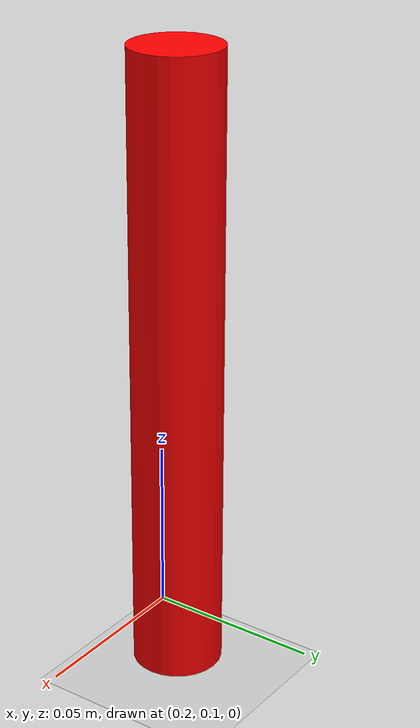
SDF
<?xml version="1.0" ?>
<sdf version="1.7">
  <world name="default">
    <physics name="bullet_featherstone_physics" type="bullet_featherstone">
      <bullet>
        <solver>
          <type>btSequentialImpulseConstraintSolver</type>
        </solver>
        <featherstone>true</featherstone>
      </bullet>
      <max_step_size>0.001</max_step_size>
      <real_time_factor>1</real_time_factor>
      <damping>0.1</damping>
      <gravity>0.0 0.0 -9.8</gravity>
    </physics>

    <plugin filename="gz-sim-physics-system" name="gz::sim::systems::Physics"/>
    <plugin filename="gz-sim-user-commands-system" name="gz::sim::systems::UserCommands"/>
    <plugin filename="gz-sim-scene-broadcaster-system" name="gz::sim::systems::SceneBroadcaster"/>
    <plugin filename="gz-sim-sensors-system" name="gz::sim::systems::Sensors">
      <render_engine>ogre2</render_engine>
    </plugin>

    <light type="directional" name="sun">
      <cast_shadows>true</cast_shadows>
      <pose>0 0 10 0 0 0</pose>
      <diffuse>0.8 0.8 0.8 1</diffuse>
      <specular>0.2 0.2 0.2 1</specular>
      <attenuation>
        <range>1000</range>
        <constant>0.9</constant>
        <linear>0.01</linear>
        <quadratic>0.001</quadratic>
      </attenuation>
      <direction>-0.5 0.1 -0.9</direction>
    </light>

    <model name="ground_plane">
      <static>true</static>
      <link name="link">
        <collision name="collision">
          <geometry>
            <plane>
              <normal>0 0 1</normal>
              <size>100 100</size>
            </plane>
          </geometry>
        </collision>
        <visual name="visual">
          <geometry>
            <plane>
              <normal>0 0 1</normal>
              <size>100 100</size>
            </plane>
          </geometry>
          <material>
            <ambient>0.8 0.8 0.8 1</ambient>
            <diffuse>0.8 0.8 0.8 1</diffuse>
          </material>
        </visual>
      </link>
    </model>

    <include>
      <uri>model://red_cylinder</uri>
      <name>red_cylinder</name>
      <pose>0.22 0.12 0.0875 0 0 0</pose>
    </include>

    <gui fullscreen="0">
      <camera name="observer_camera">
        <pose>-6 0 6 0 0.5 0</pose>
        <view_controller>orbit</view_controller>
        <projection_type>perspective</projection_type>
      </camera>
    </gui>

    <scene>
      <shadows>false</shadows>
    </scene>
  </world>
</sdf>

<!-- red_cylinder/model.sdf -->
<sdf version="1.6">
  <model name="red_cylinder">
    <static>false</static>
    <link name="link">
      <inertial>
        <mass>0.050</mass>
        <inertia>
          <ixx>0.000000204</ixx>
          <ixy>0</ixy>
          <ixz>0</ixz>
          <iyy>0.000000204</iyy>
          <iyz>0</iyz>
          <izz>0.000000039</izz>
        </inertia>
      </inertial>
      <collision name="collision">
        <geometry>
          <cylinder>
            <radius>0.0125</radius>
            <length>0.175</length>
          </cylinder>
        </geometry>
        <surface>
          <friction>
            <ode>
              <mu>1.2</mu>
              <mu2>1.2</mu2>
              <fdir1>0 0 1</fdir1>
              <slip1>0.0005</slip1>
              <slip2>0.0005</slip2>
            </ode>
            <torsional>
              <coefficient>0.1</coefficient>
              <surface_radius>0.0125</surface_radius>
              <use_patch_radius>true</use_patch_radius>
            </torsional>
          </friction>
          <contact>
            <ode>
              <kp>1e5</kp>
              <kd>10</kd>
              <max_vel>0.1</max_vel>
              <min_depth>0.001</min_depth>
              <soft_cfm>0.01</soft_cfm>
              <soft_erp>0.2</soft_erp>
            </ode>
          </contact>
          <bounce>
            <restitution_coefficient>0.2</restitution_coefficient>
            <threshold>0.01</threshold>
          </bounce>
        </surface>
      </collision>
      <visual name="visual">
        <geometry>
          <cylinder>
            <radius>0.0125</radius>
            <length>0.175</length>
          </cylinder>
        </geometry>
        <material>
          <ambient>1.0 0.0 0.0 1</ambient>
          <diffuse>1.0 0.0 0.0 1</diffuse>
          <specular>0.5 0.5 0.5 1</specular>
          <emissive>0.1 0 0 1</emissive>
        </material>
      </visual>
    </link>
  </model>
</sdf>
